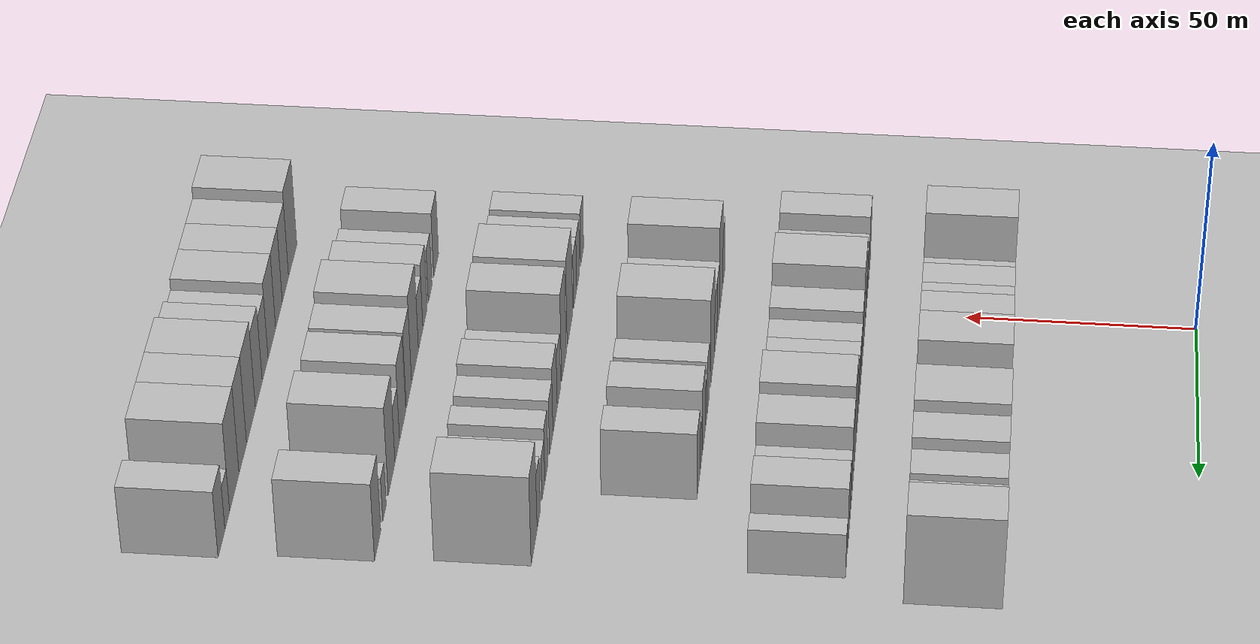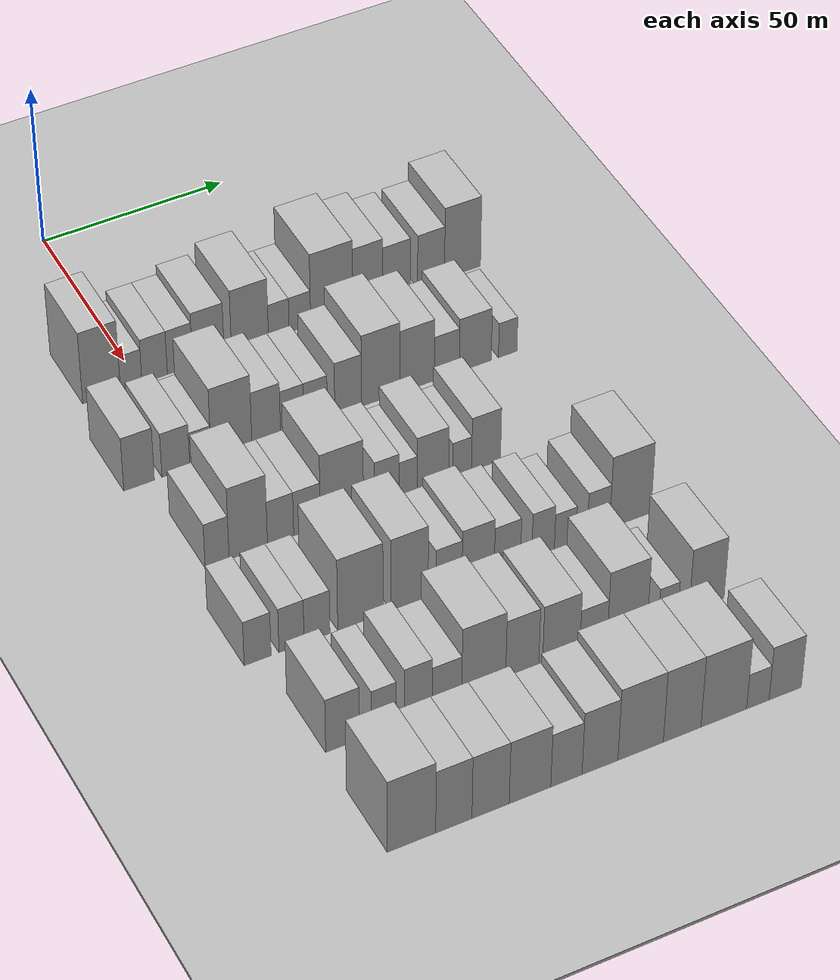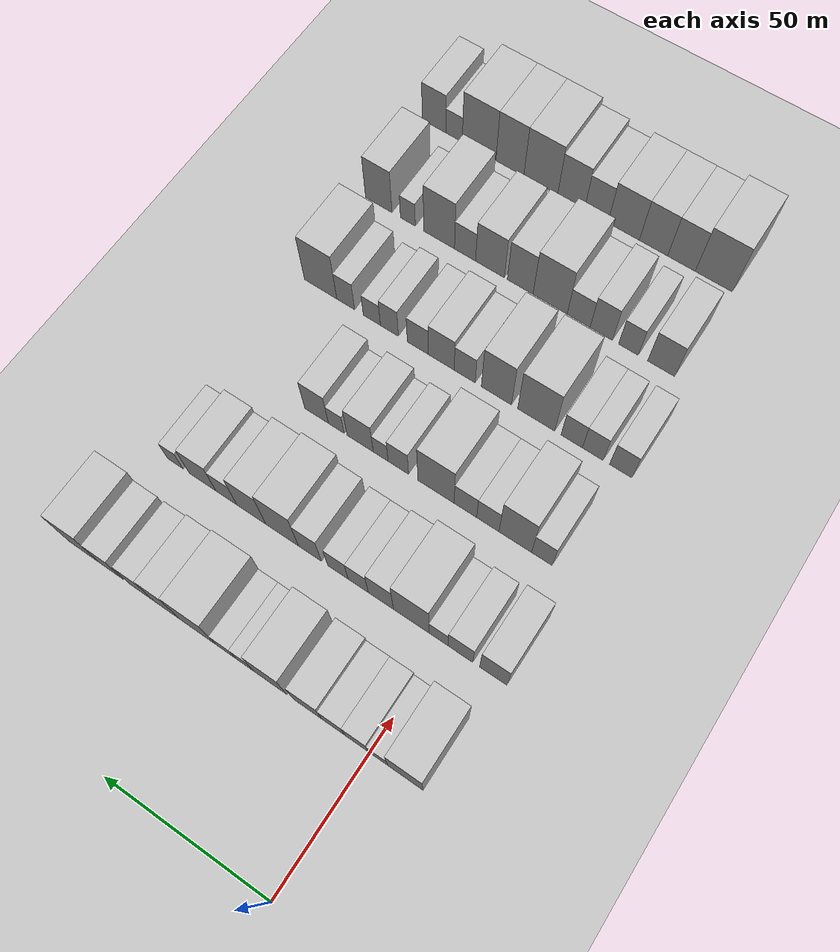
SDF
<sdf version="1.6">
 <world name="default">
  <include><name>ground_plane_1</name><uri>model://HANNAS_ground_plane</uri></include>
  <include>
   <name>ground_plane_2</name>
   <uri>model://HANNAS_ground_plane</uri>
   <pose>100 0 0  0 0 0</pose>
  </include>
  <model name="building_58">
   <static>1</static>
   <pose>50.0000 -10.4958 0 0.000000 0.000000 0.000000</pose>
   <link name="link">
    <pose>0 0 12.00 0 0 0</pose>
    <collision name="collision"><geometry><box><size>20.0000 10.1333 24.0000</size></box></geometry></collision>
    <visual name="visual">
     <cast_shadows>0</cast_shadows>
     <geometry><box><size>20.0000 10.1333 24.0000</size></box></geometry>
     <material>
      <script>
       <uri>model://HANNAS_wall/materials/scripts</uri>
       <uri>model://HANNAS_wall/materials/textures</uri>
       <name>vrc/HANNAS_wall</name>
      </script>
     </material>
    </visual>
   </link>
  </model>
  <model name="building_59">
   <static>1</static>
   <pose>50.0000 -2.5348 0 0.000000 0.000000 0.000000</pose>
   <link name="link">
    <pose>0 0 6.00 0 0 0</pose>
    <collision name="collision"><geometry><box><size>20.0000 5.7886 12.0000</size></box></geometry></collision>
    <visual name="visual">
     <cast_shadows>0</cast_shadows>
     <geometry><box><size>20.0000 5.7886 12.0000</size></box></geometry>
     <material>
      <script>
       <uri>model://HANNAS_wall/materials/scripts</uri>
       <uri>model://HANNAS_wall/materials/textures</uri>
       <name>vrc/HANNAS_wall</name>
      </script>
     </material>
    </visual>
   </link>
  </model>
  <model name="building_60">
   <static>1</static>
   <pose>50.0000 3.8094 0 0.000000 0.000000 0.000000</pose>
   <link name="link">
    <pose>0 0 7.50 0 0 0</pose>
    <collision name="collision"><geometry><box><size>20.0000 6.8997 15.0000</size></box></geometry></collision>
    <visual name="visual">
     <cast_shadows>0</cast_shadows>
     <geometry><box><size>20.0000 6.8997 15.0000</size></box></geometry>
     <material>
      <script>
       <uri>model://HANNAS_wall/materials/scripts</uri>
       <uri>model://HANNAS_wall/materials/textures</uri>
       <name>vrc/HANNAS_wall</name>
      </script>
     </material>
    </visual>
   </link>
  </model>
  <model name="building_61">
   <static>1</static>
   <pose>50.0000 10.6792 0 0.000000 0.000000 0.000000</pose>
   <link name="link">
    <pose>0 0 7.50 0 0 0</pose>
    <collision name="collision"><geometry><box><size>20.0000 6.8399 15.0000</size></box></geometry></collision>
    <visual name="visual">
     <cast_shadows>0</cast_shadows>
     <geometry><box><size>20.0000 6.8399 15.0000</size></box></geometry>
     <material>
      <script>
       <uri>model://HANNAS_wall/materials/scripts</uri>
       <uri>model://HANNAS_wall/materials/textures</uri>
       <name>vrc/HANNAS_wall</name>
      </script>
     </material>
    </visual>
   </link>
  </model>
  <model name="building_62">
   <static>1</static>
   <pose>50.0000 18.4416 0 0.000000 0.000000 0.000000</pose>
   <link name="link">
    <pose>0 0 9.00 0 0 0</pose>
    <collision name="collision"><geometry><box><size>20.0000 8.6849 18.0000</size></box></geometry></collision>
    <visual name="visual">
     <cast_shadows>0</cast_shadows>
     <geometry><box><size>20.0000 8.6849 18.0000</size></box></geometry>
     <material>
      <script>
       <uri>model://HANNAS_wall/materials/scripts</uri>
       <uri>model://HANNAS_wall/materials/textures</uri>
       <name>vrc/HANNAS_wall</name>
      </script>
     </material>
    </visual>
   </link>
  </model>
  <model name="building_63">
   <static>1</static>
   <pose>50.0000 29.8759 0 0.000000 0.000000 0.000000</pose>
   <link name="link">
    <pose>0 0 10.50 0 0 0</pose>
    <collision name="collision"><geometry><box><size>20.0000 10.1837 21.0000</size></box></geometry></collision>
    <visual name="visual">
     <cast_shadows>0</cast_shadows>
     <geometry><box><size>20.0000 10.1837 21.0000</size></box></geometry>
     <material>
      <script>
       <uri>model://HANNAS_wall/materials/scripts</uri>
       <uri>model://HANNAS_wall/materials/textures</uri>
       <name>vrc/HANNAS_wall</name>
      </script>
     </material>
    </visual>
   </link>
  </model>
  <model name="building_64">
   <static>1</static>
   <pose>50.0000 37.8308 0 0.000000 0.000000 0.000000</pose>
   <link name="link">
    <pose>0 0 6.00 0 0 0</pose>
    <collision name="collision"><geometry><box><size>20.0000 5.7262 12.0000</size></box></geometry></collision>
    <visual name="visual">
     <cast_shadows>0</cast_shadows>
     <geometry><box><size>20.0000 5.7262 12.0000</size></box></geometry>
     <material>
      <script>
       <uri>model://HANNAS_wall/materials/scripts</uri>
       <uri>model://HANNAS_wall/materials/textures</uri>
       <name>vrc/HANNAS_wall</name>
      </script>
     </material>
    </visual>
   </link>
  </model>
  <model name="building_65">
   <static>1</static>
   <pose>50.0000 43.6933 0 0.000000 0.000000 0.000000</pose>
   <link name="link">
    <pose>0 0 6.00 0 0 0</pose>
    <collision name="collision"><geometry><box><size>20.0000 5.9989 12.0000</size></box></geometry></collision>
    <visual name="visual">
     <cast_shadows>0</cast_shadows>
     <geometry><box><size>20.0000 5.9989 12.0000</size></box></geometry>
     <material>
      <script>
       <uri>model://HANNAS_wall/materials/scripts</uri>
       <uri>model://HANNAS_wall/materials/textures</uri>
       <name>vrc/HANNAS_wall</name>
      </script>
     </material>
    </visual>
   </link>
  </model>
  <model name="building_66">
   <static>1</static>
   <pose>50.0000 52.6197 0 0.000000 0.000000 0.000000</pose>
   <link name="link">
    <pose>0 0 12.00 0 0 0</pose>
    <collision name="collision"><geometry><box><size>20.0000 11.8538 24.0000</size></box></geometry></collision>
    <visual name="visual">
     <cast_shadows>0</cast_shadows>
     <geometry><box><size>20.0000 11.8538 24.0000</size></box></geometry>
     <material>
      <script>
       <uri>model://HANNAS_wall/materials/scripts</uri>
       <uri>model://HANNAS_wall/materials/textures</uri>
       <name>vrc/HANNAS_wall</name>
      </script>
     </material>
    </visual>
   </link>
  </model>
  <model name="building_67">
   <static>1</static>
   <pose>50.0000 62.7724 0 0.000000 0.000000 0.000000</pose>
   <link name="link">
    <pose>0 0 10.50 0 0 0</pose>
    <collision name="collision"><geometry><box><size>20.0000 8.4517 21.0000</size></box></geometry></collision>
    <visual name="visual">
     <cast_shadows>0</cast_shadows>
     <geometry><box><size>20.0000 8.4517 21.0000</size></box></geometry>
     <material>
      <script>
       <uri>model://HANNAS_wall/materials/scripts</uri>
       <uri>model://HANNAS_wall/materials/textures</uri>
       <name>vrc/HANNAS_wall</name>
      </script>
     </material>
    </visual>
   </link>
  </model>
  <model name="building_68">
   <static>1</static>
   <pose>50.0000 70.9014 0 0.000000 0.000000 0.000000</pose>
   <link name="link">
    <pose>0 0 9.00 0 0 0</pose>
    <collision name="collision"><geometry><box><size>20.0000 7.8062 18.0000</size></box></geometry></collision>
    <visual name="visual">
     <cast_shadows>0</cast_shadows>
     <geometry><box><size>20.0000 7.8062 18.0000</size></box></geometry>
     <material>
      <script>
       <uri>model://HANNAS_wall/materials/scripts</uri>
       <uri>model://HANNAS_wall/materials/textures</uri>
       <name>vrc/HANNAS_wall</name>
      </script>
     </material>
    </visual>
   </link>
  </model>
  <model name="building_69">
   <static>1</static>
   <pose>50.0000 80.6504 0 0.000000 0.000000 0.000000</pose>
   <link name="link">
    <pose>0 0 9.00 0 0 0</pose>
    <collision name="collision"><geometry><box><size>20.0000 7.6919 18.0000</size></box></geometry></collision>
    <visual name="visual">
     <cast_shadows>0</cast_shadows>
     <geometry><box><size>20.0000 7.6919 18.0000</size></box></geometry>
     <material>
      <script>
       <uri>model://HANNAS_wall/materials/scripts</uri>
       <uri>model://HANNAS_wall/materials/textures</uri>
       <name>vrc/HANNAS_wall</name>
      </script>
     </material>
    </visual>
   </link>
  </model>
  <model name="building_70">
   <static>1</static>
   <pose>50.0000 89.6480 0 0.000000 0.000000 0.000000</pose>
   <link name="link">
    <pose>0 0 12.00 0 0 0</pose>
    <collision name="collision"><geometry><box><size>20.0000 10.3033 24.0000</size></box></geometry></collision>
    <visual name="visual">
     <cast_shadows>0</cast_shadows>
     <geometry><box><size>20.0000 10.3033 24.0000</size></box></geometry>
     <material>
      <script>
       <uri>model://HANNAS_wall/materials/scripts</uri>
       <uri>model://HANNAS_wall/materials/textures</uri>
       <name>vrc/HANNAS_wall</name>
      </script>
     </material>
    </visual>
   </link>
  </model>
  <model name="building_177">
   <static>1</static>
   <pose>82.0000 -14.9512 0 0.000000 0.000000 0.000000</pose>
   <link name="link">
    <pose>0 0 9.00 0 0 0</pose>
    <collision name="collision"><geometry><box><size>20.0000 8.0594 18.0000</size></box></geometry></collision>
    <visual name="visual">
     <cast_shadows>0</cast_shadows>
     <geometry><box><size>20.0000 8.0594 18.0000</size></box></geometry>
     <material>
      <script>
       <uri>model://HANNAS_wall/materials/scripts</uri>
       <uri>model://HANNAS_wall/materials/textures</uri>
       <name>vrc/HANNAS_wall</name>
      </script>
     </material>
    </visual>
   </link>
  </model>
  <model name="building_178">
   <static>1</static>
   <pose>82.0000 -5.2266 0 0.000000 0.000000 0.000000</pose>
   <link name="link">
    <pose>0 0 7.50 0 0 0</pose>
    <collision name="collision"><geometry><box><size>20.0000 7.3899 15.0000</size></box></geometry></collision>
    <visual name="visual">
     <cast_shadows>0</cast_shadows>
     <geometry><box><size>20.0000 7.3899 15.0000</size></box></geometry>
     <material>
      <script>
       <uri>model://HANNAS_wall/materials/scripts</uri>
       <uri>model://HANNAS_wall/materials/textures</uri>
       <name>vrc/HANNAS_wall</name>
      </script>
     </material>
    </visual>
   </link>
  </model>
  <model name="building_179">
   <static>1</static>
   <pose>82.0000 1.3229 0 0.000000 0.000000 0.000000</pose>
   <link name="link">
    <pose>0 0 6.00 0 0 0</pose>
    <collision name="collision"><geometry><box><size>20.0000 5.7090 12.0000</size></box></geometry></collision>
    <visual name="visual">
     <cast_shadows>0</cast_shadows>
     <geometry><box><size>20.0000 5.7090 12.0000</size></box></geometry>
     <material>
      <script>
       <uri>model://HANNAS_wall/materials/scripts</uri>
       <uri>model://HANNAS_wall/materials/textures</uri>
       <name>vrc/HANNAS_wall</name>
      </script>
     </material>
    </visual>
   </link>
  </model>
  <model name="building_180">
   <static>1</static>
   <pose>82.0000 9.6187 0 0.000000 0.000000 0.000000</pose>
   <link name="link">
    <pose>0 0 12.00 0 0 0</pose>
    <collision name="collision"><geometry><box><size>20.0000 10.8826 24.0000</size></box></geometry></collision>
    <visual name="visual">
     <cast_shadows>0</cast_shadows>
     <geometry><box><size>20.0000 10.8826 24.0000</size></box></geometry>
     <material>
      <script>
       <uri>model://HANNAS_wall/materials/scripts</uri>
       <uri>model://HANNAS_wall/materials/textures</uri>
       <name>vrc/HANNAS_wall</name>
      </script>
     </material>
    </visual>
   </link>
  </model>
  <model name="building_181">
   <static>1</static>
   <pose>82.0000 18.9176 0 0.000000 0.000000 0.000000</pose>
   <link name="link">
    <pose>0 0 9.00 0 0 0</pose>
    <collision name="collision"><geometry><box><size>20.0000 7.7152 18.0000</size></box></geometry></collision>
    <visual name="visual">
     <cast_shadows>0</cast_shadows>
     <geometry><box><size>20.0000 7.7152 18.0000</size></box></geometry>
     <material>
      <script>
       <uri>model://HANNAS_wall/materials/scripts</uri>
       <uri>model://HANNAS_wall/materials/textures</uri>
       <name>vrc/HANNAS_wall</name>
      </script>
     </material>
    </visual>
   </link>
  </model>
  <model name="building_182">
   <static>1</static>
   <pose>82.0000 25.9231 0 0.000000 0.000000 0.000000</pose>
   <link name="link">
    <pose>0 0 7.50 0 0 0</pose>
    <collision name="collision"><geometry><box><size>20.0000 6.2957 15.0000</size></box></geometry></collision>
    <visual name="visual">
     <cast_shadows>0</cast_shadows>
     <geometry><box><size>20.0000 6.2957 15.0000</size></box></geometry>
     <material>
      <script>
       <uri>model://HANNAS_wall/materials/scripts</uri>
       <uri>model://HANNAS_wall/materials/textures</uri>
       <name>vrc/HANNAS_wall</name>
      </script>
     </material>
    </visual>
   </link>
  </model>
  <model name="building_183">
   <static>1</static>
   <pose>82.0000 32.2834 0 0.000000 0.000000 0.000000</pose>
   <link name="link">
    <pose>0 0 7.50 0 0 0</pose>
    <collision name="collision"><geometry><box><size>20.0000 6.4250 15.0000</size></box></geometry></collision>
    <visual name="visual">
     <cast_shadows>0</cast_shadows>
     <geometry><box><size>20.0000 6.4250 15.0000</size></box></geometry>
     <material>
      <script>
       <uri>model://HANNAS_wall/materials/scripts</uri>
       <uri>model://HANNAS_wall/materials/textures</uri>
       <name>vrc/HANNAS_wall</name>
      </script>
     </material>
    </visual>
   </link>
  </model>
  <model name="building_184">
   <static>1</static>
   <pose>82.0000 41.1507 0 0.000000 0.000000 0.000000</pose>
   <link name="link">
    <pose>0 0 9.00 0 0 0</pose>
    <collision name="collision"><geometry><box><size>20.0000 7.3096 18.0000</size></box></geometry></collision>
    <visual name="visual">
     <cast_shadows>0</cast_shadows>
     <geometry><box><size>20.0000 7.3096 18.0000</size></box></geometry>
     <material>
      <script>
       <uri>model://HANNAS_wall/materials/scripts</uri>
       <uri>model://HANNAS_wall/materials/textures</uri>
       <name>vrc/HANNAS_wall</name>
      </script>
     </material>
    </visual>
   </link>
  </model>
  <model name="building_185">
   <static>1</static>
   <pose>82.0000 50.1098 0 0.000000 0.000000 0.000000</pose>
   <link name="link">
    <pose>0 0 12.00 0 0 0</pose>
    <collision name="collision"><geometry><box><size>20.0000 10.6086 24.0000</size></box></geometry></collision>
    <visual name="visual">
     <cast_shadows>0</cast_shadows>
     <geometry><box><size>20.0000 10.6086 24.0000</size></box></geometry>
     <material>
      <script>
       <uri>model://HANNAS_wall/materials/scripts</uri>
       <uri>model://HANNAS_wall/materials/textures</uri>
       <name>vrc/HANNAS_wall</name>
      </script>
     </material>
    </visual>
   </link>
  </model>
  <model name="building_186">
   <static>1</static>
   <pose>82.0000 60.1615 0 0.000000 0.000000 0.000000</pose>
   <link name="link">
    <pose>0 0 10.50 0 0 0</pose>
    <collision name="collision"><geometry><box><size>20.0000 9.4946 21.0000</size></box></geometry></collision>
    <visual name="visual">
     <cast_shadows>0</cast_shadows>
     <geometry><box><size>20.0000 9.4946 21.0000</size></box></geometry>
     <material>
      <script>
       <uri>model://HANNAS_wall/materials/scripts</uri>
       <uri>model://HANNAS_wall/materials/textures</uri>
       <name>vrc/HANNAS_wall</name>
      </script>
     </material>
    </visual>
   </link>
  </model>
  <model name="building_187">
   <static>1</static>
   <pose>82.0000 68.3632 0 0.000000 0.000000 0.000000</pose>
   <link name="link">
    <pose>0 0 7.50 0 0 0</pose>
    <collision name="collision"><geometry><box><size>20.0000 6.9089 15.0000</size></box></geometry></collision>
    <visual name="visual">
     <cast_shadows>0</cast_shadows>
     <geometry><box><size>20.0000 6.9089 15.0000</size></box></geometry>
     <material>
      <script>
       <uri>model://HANNAS_wall/materials/scripts</uri>
       <uri>model://HANNAS_wall/materials/textures</uri>
       <name>vrc/HANNAS_wall</name>
      </script>
     </material>
    </visual>
   </link>
  </model>
  <model name="building_188">
   <static>1</static>
   <pose>82.0000 76.3154 0 0.000000 0.000000 0.000000</pose>
   <link name="link">
    <pose>0 0 9.00 0 0 0</pose>
    <collision name="collision"><geometry><box><size>20.0000 8.9955 18.0000</size></box></geometry></collision>
    <visual name="visual">
     <cast_shadows>0</cast_shadows>
     <geometry><box><size>20.0000 8.9955 18.0000</size></box></geometry>
     <material>
      <script>
       <uri>model://HANNAS_wall/materials/scripts</uri>
       <uri>model://HANNAS_wall/materials/textures</uri>
       <name>vrc/HANNAS_wall</name>
      </script>
     </material>
    </visual>
   </link>
  </model>
  <model name="building_189">
   <static>1</static>
   <pose>82.0000 85.4294 0 0.000000 0.000000 0.000000</pose>
   <link name="link">
    <pose>0 0 6.00 0 0 0</pose>
    <collision name="collision"><geometry><box><size>20.0000 5.2325 12.0000</size></box></geometry></collision>
    <visual name="visual">
     <cast_shadows>0</cast_shadows>
     <geometry><box><size>20.0000 5.2325 12.0000</size></box></geometry>
     <material>
      <script>
       <uri>model://HANNAS_wall/materials/scripts</uri>
       <uri>model://HANNAS_wall/materials/textures</uri>
       <name>vrc/HANNAS_wall</name>
      </script>
     </material>
    </visual>
   </link>
  </model>
  <model name="building_296">
   <static>1</static>
   <pose>114.0000 -9.3570 0 0.000000 0.000000 0.000000</pose>
   <link name="link">
    <pose>0 0 7.50 0 0 0</pose>
    <collision name="collision"><geometry><box><size>20.0000 6.2341 15.0000</size></box></geometry></collision>
    <visual name="visual">
     <cast_shadows>0</cast_shadows>
     <geometry><box><size>20.0000 6.2341 15.0000</size></box></geometry>
     <material>
      <script>
       <uri>model://HANNAS_wall/materials/scripts</uri>
       <uri>model://HANNAS_wall/materials/textures</uri>
       <name>vrc/HANNAS_wall</name>
      </script>
     </material>
    </visual>
   </link>
  </model>
  <model name="building_297">
   <static>1</static>
   <pose>114.0000 -1.2345 0 0.000000 0.000000 0.000000</pose>
   <link name="link">
    <pose>0 0 12.00 0 0 0</pose>
    <collision name="collision"><geometry><box><size>20.0000 10.0110 24.0000</size></box></geometry></collision>
    <visual name="visual">
     <cast_shadows>0</cast_shadows>
     <geometry><box><size>20.0000 10.0110 24.0000</size></box></geometry>
     <material>
      <script>
       <uri>model://HANNAS_wall/materials/scripts</uri>
       <uri>model://HANNAS_wall/materials/textures</uri>
       <name>vrc/HANNAS_wall</name>
      </script>
     </material>
    </visual>
   </link>
  </model>
  <model name="building_298">
   <static>1</static>
   <pose>114.0000 7.2221 0 0.000000 0.000000 0.000000</pose>
   <link name="link">
    <pose>0 0 7.50 0 0 0</pose>
    <collision name="collision"><geometry><box><size>20.0000 6.9023 15.0000</size></box></geometry></collision>
    <visual name="visual">
     <cast_shadows>0</cast_shadows>
     <geometry><box><size>20.0000 6.9023 15.0000</size></box></geometry>
     <material>
      <script>
       <uri>model://HANNAS_wall/materials/scripts</uri>
       <uri>model://HANNAS_wall/materials/textures</uri>
       <name>vrc/HANNAS_wall</name>
      </script>
     </material>
    </visual>
   </link>
  </model>
  <model name="building_299">
   <static>1</static>
   <pose>114.0000 14.2022 0 0.000000 0.000000 0.000000</pose>
   <link name="link">
    <pose>0 0 7.50 0 0 0</pose>
    <collision name="collision"><geometry><box><size>20.0000 7.0579 15.0000</size></box></geometry></collision>
    <visual name="visual">
     <cast_shadows>0</cast_shadows>
     <geometry><box><size>20.0000 7.0579 15.0000</size></box></geometry>
     <material>
      <script>
       <uri>model://HANNAS_wall/materials/scripts</uri>
       <uri>model://HANNAS_wall/materials/textures</uri>
       <name>vrc/HANNAS_wall</name>
      </script>
     </material>
    </visual>
   </link>
  </model>
  <model name="building_300">
   <static>1</static>
   <pose>114.0000 23.4519 0 0.000000 0.000000 0.000000</pose>
   <link name="link">
    <pose>0 0 12.00 0 0 0</pose>
    <collision name="collision"><geometry><box><size>20.0000 11.4416 24.0000</size></box></geometry></collision>
    <visual name="visual">
     <cast_shadows>0</cast_shadows>
     <geometry><box><size>20.0000 11.4416 24.0000</size></box></geometry>
     <material>
      <script>
       <uri>model://HANNAS_wall/materials/scripts</uri>
       <uri>model://HANNAS_wall/materials/textures</uri>
       <name>vrc/HANNAS_wall</name>
      </script>
     </material>
    </visual>
   </link>
  </model>
  <model name="building_301">
   <static>1</static>
   <pose>114.0000 35.4561 0 0.000000 0.000000 0.000000</pose>
   <link name="link">
    <pose>0 0 7.50 0 0 0</pose>
    <collision name="collision"><geometry><box><size>20.0000 6.5669 15.0000</size></box></geometry></collision>
    <visual name="visual">
     <cast_shadows>0</cast_shadows>
     <geometry><box><size>20.0000 6.5669 15.0000</size></box></geometry>
     <material>
      <script>
       <uri>model://HANNAS_wall/materials/scripts</uri>
       <uri>model://HANNAS_wall/materials/textures</uri>
       <name>vrc/HANNAS_wall</name>
      </script>
     </material>
    </visual>
   </link>
  </model>
  <model name="building_302">
   <static>1</static>
   <pose>114.0000 41.1562 0 0.000000 0.000000 0.000000</pose>
   <link name="link">
    <pose>0 0 6.00 0 0 0</pose>
    <collision name="collision"><geometry><box><size>20.0000 4.8331 12.0000</size></box></geometry></collision>
    <visual name="visual">
     <cast_shadows>0</cast_shadows>
     <geometry><box><size>20.0000 4.8331 12.0000</size></box></geometry>
     <material>
      <script>
       <uri>model://HANNAS_wall/materials/scripts</uri>
       <uri>model://HANNAS_wall/materials/textures</uri>
       <name>vrc/HANNAS_wall</name>
      </script>
     </material>
    </visual>
   </link>
  </model>
  <model name="building_303">
   <static>1</static>
   <pose>114.0000 47.8469 0 0.000000 0.000000 0.000000</pose>
   <link name="link">
    <pose>0 0 9.00 0 0 0</pose>
    <collision name="collision"><geometry><box><size>20.0000 8.5483 18.0000</size></box></geometry></collision>
    <visual name="visual">
     <cast_shadows>0</cast_shadows>
     <geometry><box><size>20.0000 8.5483 18.0000</size></box></geometry>
     <material>
      <script>
       <uri>model://HANNAS_wall/materials/scripts</uri>
       <uri>model://HANNAS_wall/materials/textures</uri>
       <name>vrc/HANNAS_wall</name>
      </script>
     </material>
    </visual>
   </link>
  </model>
  <model name="building_304">
   <static>1</static>
   <pose>114.0000 55.7135 0 0.000000 0.000000 0.000000</pose>
   <link name="link">
    <pose>0 0 6.00 0 0 0</pose>
    <collision name="collision"><geometry><box><size>20.0000 5.1850 12.0000</size></box></geometry></collision>
    <visual name="visual">
     <cast_shadows>0</cast_shadows>
     <geometry><box><size>20.0000 5.1850 12.0000</size></box></geometry>
     <material>
      <script>
       <uri>model://HANNAS_wall/materials/scripts</uri>
       <uri>model://HANNAS_wall/materials/textures</uri>
       <name>vrc/HANNAS_wall</name>
      </script>
     </material>
    </visual>
   </link>
  </model>
  <model name="building_305">
   <static>1</static>
   <pose>114.0000 62.2540 0 0.000000 0.000000 0.000000</pose>
   <link name="link">
    <pose>0 0 9.00 0 0 0</pose>
    <collision name="collision"><geometry><box><size>20.0000 7.8959 18.0000</size></box></geometry></collision>
    <visual name="visual">
     <cast_shadows>0</cast_shadows>
     <geometry><box><size>20.0000 7.8959 18.0000</size></box></geometry>
     <material>
      <script>
       <uri>model://HANNAS_wall/materials/scripts</uri>
       <uri>model://HANNAS_wall/materials/textures</uri>
       <name>vrc/HANNAS_wall</name>
      </script>
     </material>
    </visual>
   </link>
  </model>
  <model name="building_410">
   <static>1</static>
   <pose>146.0000 -14.2000 0 0.000000 0.000000 0.000000</pose>
   <link name="link">
    <pose>0 0 7.50 0 0 0</pose>
    <collision name="collision"><geometry><box><size>20.0000 6.8583 15.0000</size></box></geometry></collision>
    <visual name="visual">
     <cast_shadows>0</cast_shadows>
     <geometry><box><size>20.0000 6.8583 15.0000</size></box></geometry>
     <material>
      <script>
       <uri>model://HANNAS_wall/materials/scripts</uri>
       <uri>model://HANNAS_wall/materials/textures</uri>
       <name>vrc/HANNAS_wall</name>
      </script>
     </material>
    </visual>
   </link>
  </model>
  <model name="building_411">
   <static>1</static>
   <pose>146.0000 -5.5568 0 0.000000 0.000000 0.000000</pose>
   <link name="link">
    <pose>0 0 7.50 0 0 0</pose>
    <collision name="collision"><geometry><box><size>20.0000 6.4282 15.0000</size></box></geometry></collision>
    <visual name="visual">
     <cast_shadows>0</cast_shadows>
     <geometry><box><size>20.0000 6.4282 15.0000</size></box></geometry>
     <material>
      <script>
       <uri>model://HANNAS_wall/materials/scripts</uri>
       <uri>model://HANNAS_wall/materials/textures</uri>
       <name>vrc/HANNAS_wall</name>
      </script>
     </material>
    </visual>
   </link>
  </model>
  <model name="building_412">
   <static>1</static>
   <pose>146.0000 0.9946 0 0.000000 0.000000 0.000000</pose>
   <link name="link">
    <pose>0 0 7.50 0 0 0</pose>
    <collision name="collision"><geometry><box><size>20.0000 6.6745 15.0000</size></box></geometry></collision>
    <visual name="visual">
     <cast_shadows>0</cast_shadows>
     <geometry><box><size>20.0000 6.6745 15.0000</size></box></geometry>
     <material>
      <script>
       <uri>model://HANNAS_wall/materials/scripts</uri>
       <uri>model://HANNAS_wall/materials/textures</uri>
       <name>vrc/HANNAS_wall</name>
      </script>
     </material>
    </visual>
   </link>
  </model>
  <model name="building_413">
   <static>1</static>
   <pose>146.0000 12.2223 0 0.000000 0.000000 0.000000</pose>
   <link name="link">
    <pose>0 0 12.00 0 0 0</pose>
    <collision name="collision"><geometry><box><size>20.0000 11.7808 24.0000</size></box></geometry></collision>
    <visual name="visual">
     <cast_shadows>0</cast_shadows>
     <geometry><box><size>20.0000 11.7808 24.0000</size></box></geometry>
     <material>
      <script>
       <uri>model://HANNAS_wall/materials/scripts</uri>
       <uri>model://HANNAS_wall/materials/textures</uri>
       <name>vrc/HANNAS_wall</name>
      </script>
     </material>
    </visual>
   </link>
  </model>
  <model name="building_414">
   <static>1</static>
   <pose>146.0000 24.9840 0 0.000000 0.000000 0.000000</pose>
   <link name="link">
    <pose>0 0 12.00 0 0 0</pose>
    <collision name="collision"><geometry><box><size>20.0000 9.7426 24.0000</size></box></geometry></collision>
    <visual name="visual">
     <cast_shadows>0</cast_shadows>
     <geometry><box><size>20.0000 9.7426 24.0000</size></box></geometry>
     <material>
      <script>
       <uri>model://HANNAS_wall/materials/scripts</uri>
       <uri>model://HANNAS_wall/materials/textures</uri>
       <name>vrc/HANNAS_wall</name>
      </script>
     </material>
    </visual>
   </link>
  </model>
  <model name="building_415">
   <static>1</static>
   <pose>146.0000 35.3116 0 0.000000 0.000000 0.000000</pose>
   <link name="link">
    <pose>0 0 7.50 0 0 0</pose>
    <collision name="collision"><geometry><box><size>20.0000 6.9125 15.0000</size></box></geometry></collision>
    <visual name="visual">
     <cast_shadows>0</cast_shadows>
     <geometry><box><size>20.0000 6.9125 15.0000</size></box></geometry>
     <material>
      <script>
       <uri>model://HANNAS_wall/materials/scripts</uri>
       <uri>model://HANNAS_wall/materials/textures</uri>
       <name>vrc/HANNAS_wall</name>
      </script>
     </material>
    </visual>
   </link>
  </model>
  <model name="building_416">
   <static>1</static>
   <pose>146.0000 43.0569 0 0.000000 0.000000 0.000000</pose>
   <link name="link">
    <pose>0 0 9.00 0 0 0</pose>
    <collision name="collision"><geometry><box><size>20.0000 8.5781 18.0000</size></box></geometry></collision>
    <visual name="visual">
     <cast_shadows>0</cast_shadows>
     <geometry><box><size>20.0000 8.5781 18.0000</size></box></geometry>
     <material>
      <script>
       <uri>model://HANNAS_wall/materials/scripts</uri>
       <uri>model://HANNAS_wall/materials/textures</uri>
       <name>vrc/HANNAS_wall</name>
      </script>
     </material>
    </visual>
   </link>
  </model>
  <model name="building_417">
   <static>1</static>
   <pose>146.0000 50.8517 0 0.000000 0.000000 0.000000</pose>
   <link name="link">
    <pose>0 0 7.50 0 0 0</pose>
    <collision name="collision"><geometry><box><size>20.0000 7.0116 15.0000</size></box></geometry></collision>
    <visual name="visual">
     <cast_shadows>0</cast_shadows>
     <geometry><box><size>20.0000 7.0116 15.0000</size></box></geometry>
     <material>
      <script>
       <uri>model://HANNAS_wall/materials/scripts</uri>
       <uri>model://HANNAS_wall/materials/textures</uri>
       <name>vrc/HANNAS_wall</name>
      </script>
     </material>
    </visual>
   </link>
  </model>
  <model name="building_418">
   <static>1</static>
   <pose>146.0000 60.4018 0 0.000000 0.000000 0.000000</pose>
   <link name="link">
    <pose>0 0 7.50 0 0 0</pose>
    <collision name="collision"><geometry><box><size>20.0000 6.0886 15.0000</size></box></geometry></collision>
    <visual name="visual">
     <cast_shadows>0</cast_shadows>
     <geometry><box><size>20.0000 6.0886 15.0000</size></box></geometry>
     <material>
      <script>
       <uri>model://HANNAS_wall/materials/scripts</uri>
       <uri>model://HANNAS_wall/materials/textures</uri>
       <name>vrc/HANNAS_wall</name>
      </script>
     </material>
    </visual>
   </link>
  </model>
  <model name="building_419">
   <static>1</static>
   <pose>146.0000 66.3655 0 0.000000 0.000000 0.000000</pose>
   <link name="link">
    <pose>0 0 6.00 0 0 0</pose>
    <collision name="collision"><geometry><box><size>20.0000 5.8387 12.0000</size></box></geometry></collision>
    <visual name="visual">
     <cast_shadows>0</cast_shadows>
     <geometry><box><size>20.0000 5.8387 12.0000</size></box></geometry>
     <material>
      <script>
       <uri>model://HANNAS_wall/materials/scripts</uri>
       <uri>model://HANNAS_wall/materials/textures</uri>
       <name>vrc/HANNAS_wall</name>
      </script>
     </material>
    </visual>
   </link>
  </model>
  <model name="building_420">
   <static>1</static>
   <pose>146.0000 75.3484 0 0.000000 0.000000 0.000000</pose>
   <link name="link">
    <pose>0 0 7.50 0 0 0</pose>
    <collision name="collision"><geometry><box><size>20.0000 6.1272 15.0000</size></box></geometry></collision>
    <visual name="visual">
     <cast_shadows>0</cast_shadows>
     <geometry><box><size>20.0000 6.1272 15.0000</size></box></geometry>
     <material>
      <script>
       <uri>model://HANNAS_wall/materials/scripts</uri>
       <uri>model://HANNAS_wall/materials/textures</uri>
       <name>vrc/HANNAS_wall</name>
      </script>
     </material>
    </visual>
   </link>
  </model>
  <model name="building_421">
   <static>1</static>
   <pose>146.0000 84.0489 0 0.000000 0.000000 0.000000</pose>
   <link name="link">
    <pose>0 0 12.00 0 0 0</pose>
    <collision name="collision"><geometry><box><size>20.0000 11.2738 24.0000</size></box></geometry></collision>
    <visual name="visual">
     <cast_shadows>0</cast_shadows>
     <geometry><box><size>20.0000 11.2738 24.0000</size></box></geometry>
     <material>
      <script>
       <uri>model://HANNAS_wall/materials/scripts</uri>
       <uri>model://HANNAS_wall/materials/textures</uri>
       <name>vrc/HANNAS_wall</name>
      </script>
     </material>
    </visual>
   </link>
  </model>
  <model name="building_531">
   <static>1</static>
   <pose>178.0000 -8.4251 0 0.000000 0.000000 0.000000</pose>
   <link name="link">
    <pose>0 0 9.00 0 0 0</pose>
    <collision name="collision"><geometry><box><size>20.0000 8.5259 18.0000</size></box></geometry></collision>
    <visual name="visual">
     <cast_shadows>0</cast_shadows>
     <geometry><box><size>20.0000 8.5259 18.0000</size></box></geometry>
     <material>
      <script>
       <uri>model://HANNAS_wall/materials/scripts</uri>
       <uri>model://HANNAS_wall/materials/textures</uri>
       <name>vrc/HANNAS_wall</name>
      </script>
     </material>
    </visual>
   </link>
  </model>
  <model name="building_532">
   <static>1</static>
   <pose>178.0000 1.9739 0 0.000000 0.000000 0.000000</pose>
   <link name="link">
    <pose>0 0 7.50 0 0 0</pose>
    <collision name="collision"><geometry><box><size>20.0000 6.2720 15.0000</size></box></geometry></collision>
    <visual name="visual">
     <cast_shadows>0</cast_shadows>
     <geometry><box><size>20.0000 6.2720 15.0000</size></box></geometry>
     <material>
      <script>
       <uri>model://HANNAS_wall/materials/scripts</uri>
       <uri>model://HANNAS_wall/materials/textures</uri>
       <name>vrc/HANNAS_wall</name>
      </script>
     </material>
    </visual>
   </link>
  </model>
  <model name="building_533">
   <static>1</static>
   <pose>178.0000 10.7130 0 0.000000 0.000000 0.000000</pose>
   <link name="link">
    <pose>0 0 9.00 0 0 0</pose>
    <collision name="collision"><geometry><box><size>20.0000 7.2064 18.0000</size></box></geometry></collision>
    <visual name="visual">
     <cast_shadows>0</cast_shadows>
     <geometry><box><size>20.0000 7.2064 18.0000</size></box></geometry>
     <material>
      <script>
       <uri>model://HANNAS_wall/materials/scripts</uri>
       <uri>model://HANNAS_wall/materials/textures</uri>
       <name>vrc/HANNAS_wall</name>
      </script>
     </material>
    </visual>
   </link>
  </model>
  <model name="building_534">
   <static>1</static>
   <pose>178.0000 18.0569 0 0.000000 0.000000 0.000000</pose>
   <link name="link">
    <pose>0 0 7.50 0 0 0</pose>
    <collision name="collision"><geometry><box><size>20.0000 7.4812 15.0000</size></box></geometry></collision>
    <visual name="visual">
     <cast_shadows>0</cast_shadows>
     <geometry><box><size>20.0000 7.4812 15.0000</size></box></geometry>
     <material>
      <script>
       <uri>model://HANNAS_wall/materials/scripts</uri>
       <uri>model://HANNAS_wall/materials/textures</uri>
       <name>vrc/HANNAS_wall</name>
      </script>
     </material>
    </visual>
   </link>
  </model>
  <model name="building_535">
   <static>1</static>
   <pose>178.0000 27.4562 0 0.000000 0.000000 0.000000</pose>
   <link name="link">
    <pose>0 0 12.00 0 0 0</pose>
    <collision name="collision"><geometry><box><size>20.0000 11.3175 24.0000</size></box></geometry></collision>
    <visual name="visual">
     <cast_shadows>0</cast_shadows>
     <geometry><box><size>20.0000 11.3175 24.0000</size></box></geometry>
     <material>
      <script>
       <uri>model://HANNAS_wall/materials/scripts</uri>
       <uri>model://HANNAS_wall/materials/textures</uri>
       <name>vrc/HANNAS_wall</name>
      </script>
     </material>
    </visual>
   </link>
  </model>
  <model name="building_536">
   <static>1</static>
   <pose>178.0000 37.4134 0 0.000000 0.000000 0.000000</pose>
   <link name="link">
    <pose>0 0 10.50 0 0 0</pose>
    <collision name="collision"><geometry><box><size>20.0000 8.5969 21.0000</size></box></geometry></collision>
    <visual name="visual">
     <cast_shadows>0</cast_shadows>
     <geometry><box><size>20.0000 8.5969 21.0000</size></box></geometry>
     <material>
      <script>
       <uri>model://HANNAS_wall/materials/scripts</uri>
       <uri>model://HANNAS_wall/materials/textures</uri>
       <name>vrc/HANNAS_wall</name>
      </script>
     </material>
    </visual>
   </link>
  </model>
  <model name="building_537">
   <static>1</static>
   <pose>178.0000 47.5981 0 0.000000 0.000000 0.000000</pose>
   <link name="link">
    <pose>0 0 10.50 0 0 0</pose>
    <collision name="collision"><geometry><box><size>20.0000 9.7723 21.0000</size></box></geometry></collision>
    <visual name="visual">
     <cast_shadows>0</cast_shadows>
     <geometry><box><size>20.0000 9.7723 21.0000</size></box></geometry>
     <material>
      <script>
       <uri>model://HANNAS_wall/materials/scripts</uri>
       <uri>model://HANNAS_wall/materials/textures</uri>
       <name>vrc/HANNAS_wall</name>
      </script>
     </material>
    </visual>
   </link>
  </model>
  <model name="building_538">
   <static>1</static>
   <pose>178.0000 56.0918 0 0.000000 0.000000 0.000000</pose>
   <link name="link">
    <pose>0 0 7.50 0 0 0</pose>
    <collision name="collision"><geometry><box><size>20.0000 7.2152 15.0000</size></box></geometry></collision>
    <visual name="visual">
     <cast_shadows>0</cast_shadows>
     <geometry><box><size>20.0000 7.2152 15.0000</size></box></geometry>
     <material>
      <script>
       <uri>model://HANNAS_wall/materials/scripts</uri>
       <uri>model://HANNAS_wall/materials/textures</uri>
       <name>vrc/HANNAS_wall</name>
      </script>
     </material>
    </visual>
   </link>
  </model>
  <model name="building_539">
   <static>1</static>
   <pose>178.0000 65.0123 0 0.000000 0.000000 0.000000</pose>
   <link name="link">
    <pose>0 0 12.00 0 0 0</pose>
    <collision name="collision"><geometry><box><size>20.0000 10.6257 24.0000</size></box></geometry></collision>
    <visual name="visual">
     <cast_shadows>0</cast_shadows>
     <geometry><box><size>20.0000 10.6257 24.0000</size></box></geometry>
     <material>
      <script>
       <uri>model://HANNAS_wall/materials/scripts</uri>
       <uri>model://HANNAS_wall/materials/textures</uri>
       <name>vrc/HANNAS_wall</name>
      </script>
     </material>
    </visual>
   </link>
  </model>
  <model name="building_540">
   <static>1</static>
   <pose>178.0000 75.9347 0 0.000000 0.000000 0.000000</pose>
   <link name="link">
    <pose>0 0 6.00 0 0 0</pose>
    <collision name="collision"><geometry><box><size>20.0000 5.2192 12.0000</size></box></geometry></collision>
    <visual name="visual">
     <cast_shadows>0</cast_shadows>
     <geometry><box><size>20.0000 5.2192 12.0000</size></box></geometry>
     <material>
      <script>
       <uri>model://HANNAS_wall/materials/scripts</uri>
       <uri>model://HANNAS_wall/materials/textures</uri>
       <name>vrc/HANNAS_wall</name>
      </script>
     </material>
    </visual>
   </link>
  </model>
  <model name="building_541">
   <static>1</static>
   <pose>178.0000 86.2392 0 0.000000 0.000000 0.000000</pose>
   <link name="link">
    <pose>0 0 10.50 0 0 0</pose>
    <collision name="collision"><geometry><box><size>20.0000 9.3896 21.0000</size></box></geometry></collision>
    <visual name="visual">
     <cast_shadows>0</cast_shadows>
     <geometry><box><size>20.0000 9.3896 21.0000</size></box></geometry>
     <material>
      <script>
       <uri>model://HANNAS_wall/materials/scripts</uri>
       <uri>model://HANNAS_wall/materials/textures</uri>
       <name>vrc/HANNAS_wall</name>
      </script>
     </material>
    </visual>
   </link>
  </model>
  <model name="building_649">
   <static>1</static>
   <pose>210.0000 -7.5144 0 0.000000 0.000000 0.000000</pose>
   <link name="link">
    <pose>0 0 12.00 0 0 0</pose>
    <collision name="collision"><geometry><box><size>20.0000 11.9462 24.0000</size></box></geometry></collision>
    <visual name="visual">
     <cast_shadows>0</cast_shadows>
     <geometry><box><size>20.0000 11.9462 24.0000</size></box></geometry>
     <material>
      <script>
       <uri>model://HANNAS_wall/materials/scripts</uri>
       <uri>model://HANNAS_wall/materials/textures</uri>
       <name>vrc/HANNAS_wall</name>
      </script>
     </material>
    </visual>
   </link>
  </model>
  <model name="building_650">
   <static>1</static>
   <pose>210.0000 2.9738 0 0.000000 0.000000 0.000000</pose>
   <link name="link">
    <pose>0 0 10.50 0 0 0</pose>
    <collision name="collision"><geometry><box><size>20.0000 9.0303 21.0000</size></box></geometry></collision>
    <visual name="visual">
     <cast_shadows>0</cast_shadows>
     <geometry><box><size>20.0000 9.0303 21.0000</size></box></geometry>
     <material>
      <script>
       <uri>model://HANNAS_wall/materials/scripts</uri>
       <uri>model://HANNAS_wall/materials/textures</uri>
       <name>vrc/HANNAS_wall</name>
      </script>
     </material>
    </visual>
   </link>
  </model>
  <model name="building_651">
   <static>1</static>
   <pose>210.0000 12.1633 0 0.000000 0.000000 0.000000</pose>
   <link name="link">
    <pose>0 0 10.50 0 0 0</pose>
    <collision name="collision"><geometry><box><size>20.0000 9.3488 21.0000</size></box></geometry></collision>
    <visual name="visual">
     <cast_shadows>0</cast_shadows>
     <geometry><box><size>20.0000 9.3488 21.0000</size></box></geometry>
     <material>
      <script>
       <uri>model://HANNAS_wall/materials/scripts</uri>
       <uri>model://HANNAS_wall/materials/textures</uri>
       <name>vrc/HANNAS_wall</name>
      </script>
     </material>
    </visual>
   </link>
  </model>
  <model name="building_652">
   <static>1</static>
   <pose>210.0000 22.0838 0 0.000000 0.000000 0.000000</pose>
   <link name="link">
    <pose>0 0 10.50 0 0 0</pose>
    <collision name="collision"><geometry><box><size>20.0000 10.4922 21.0000</size></box></geometry></collision>
    <visual name="visual">
     <cast_shadows>0</cast_shadows>
     <geometry><box><size>20.0000 10.4922 21.0000</size></box></geometry>
     <material>
      <script>
       <uri>model://HANNAS_wall/materials/scripts</uri>
       <uri>model://HANNAS_wall/materials/textures</uri>
       <name>vrc/HANNAS_wall</name>
      </script>
     </material>
    </visual>
   </link>
  </model>
  <model name="building_653">
   <static>1</static>
   <pose>210.0000 31.3125 0 0.000000 0.000000 0.000000</pose>
   <link name="link">
    <pose>0 0 9.00 0 0 0</pose>
    <collision name="collision"><geometry><box><size>20.0000 7.9651 18.0000</size></box></geometry></collision>
    <visual name="visual">
     <cast_shadows>0</cast_shadows>
     <geometry><box><size>20.0000 7.9651 18.0000</size></box></geometry>
     <material>
      <script>
       <uri>model://HANNAS_wall/materials/scripts</uri>
       <uri>model://HANNAS_wall/materials/textures</uri>
       <name>vrc/HANNAS_wall</name>
      </script>
     </material>
    </visual>
   </link>
  </model>
  <model name="building_654">
   <static>1</static>
   <pose>210.0000 39.8836 0 0.000000 0.000000 0.000000</pose>
   <link name="link">
    <pose>0 0 10.50 0 0 0</pose>
    <collision name="collision"><geometry><box><size>20.0000 9.1769 21.0000</size></box></geometry></collision>
    <visual name="visual">
     <cast_shadows>0</cast_shadows>
     <geometry><box><size>20.0000 9.1769 21.0000</size></box></geometry>
     <material>
      <script>
       <uri>model://HANNAS_wall/materials/scripts</uri>
       <uri>model://HANNAS_wall/materials/textures</uri>
       <name>vrc/HANNAS_wall</name>
      </script>
     </material>
    </visual>
   </link>
  </model>
  <model name="building_655">
   <static>1</static>
   <pose>210.0000 50.3323 0 0.000000 0.000000 0.000000</pose>
   <link name="link">
    <pose>0 0 12.00 0 0 0</pose>
    <collision name="collision"><geometry><box><size>20.0000 11.7205 24.0000</size></box></geometry></collision>
    <visual name="visual">
     <cast_shadows>0</cast_shadows>
     <geometry><box><size>20.0000 11.7205 24.0000</size></box></geometry>
     <material>
      <script>
       <uri>model://HANNAS_wall/materials/scripts</uri>
       <uri>model://HANNAS_wall/materials/textures</uri>
       <name>vrc/HANNAS_wall</name>
      </script>
     </material>
    </visual>
   </link>
  </model>
  <model name="building_656">
   <static>1</static>
   <pose>210.0000 61.0850 0 0.000000 0.000000 0.000000</pose>
   <link name="link">
    <pose>0 0 12.00 0 0 0</pose>
    <collision name="collision"><geometry><box><size>20.0000 9.7849 24.0000</size></box></geometry></collision>
    <visual name="visual">
     <cast_shadows>0</cast_shadows>
     <geometry><box><size>20.0000 9.7849 24.0000</size></box></geometry>
     <material>
      <script>
       <uri>model://HANNAS_wall/materials/scripts</uri>
       <uri>model://HANNAS_wall/materials/textures</uri>
       <name>vrc/HANNAS_wall</name>
      </script>
     </material>
    </visual>
   </link>
  </model>
  <model name="building_657">
   <static>1</static>
   <pose>210.0000 71.9757 0 0.000000 0.000000 0.000000</pose>
   <link name="link">
    <pose>0 0 12.00 0 0 0</pose>
    <collision name="collision"><geometry><box><size>20.0000 11.9966 24.0000</size></box></geometry></collision>
    <visual name="visual">
     <cast_shadows>0</cast_shadows>
     <geometry><box><size>20.0000 11.9966 24.0000</size></box></geometry>
     <material>
      <script>
       <uri>model://HANNAS_wall/materials/scripts</uri>
       <uri>model://HANNAS_wall/materials/textures</uri>
       <name>vrc/HANNAS_wall</name>
      </script>
     </material>
    </visual>
   </link>
  </model>
  <model name="building_658">
   <static>1</static>
   <pose>210.0000 80.9297 0 0.000000 0.000000 0.000000</pose>
   <link name="link">
    <pose>0 0 6.00 0 0 0</pose>
    <collision name="collision"><geometry><box><size>20.0000 5.9114 12.0000</size></box></geometry></collision>
    <visual name="visual">
     <cast_shadows>0</cast_shadows>
     <geometry><box><size>20.0000 5.9114 12.0000</size></box></geometry>
     <material>
      <script>
       <uri>model://HANNAS_wall/materials/scripts</uri>
       <uri>model://HANNAS_wall/materials/textures</uri>
       <name>vrc/HANNAS_wall</name>
      </script>
     </material>
    </visual>
   </link>
  </model>
  <model name="building_659">
   <static>1</static>
   <pose>210.0000 88.1607 0 0.000000 0.000000 0.000000</pose>
   <link name="link">
    <pose>0 0 9.00 0 0 0</pose>
    <collision name="collision"><geometry><box><size>20.0000 8.5505 18.0000</size></box></geometry></collision>
    <visual name="visual">
     <cast_shadows>0</cast_shadows>
     <geometry><box><size>20.0000 8.5505 18.0000</size></box></geometry>
     <material>
      <script>
       <uri>model://HANNAS_wall/materials/scripts</uri>
       <uri>model://HANNAS_wall/materials/textures</uri>
       <name>vrc/HANNAS_wall</name>
      </script>
     </material>
    </visual>
   </link>
  </model>
 </world>
</sdf>
